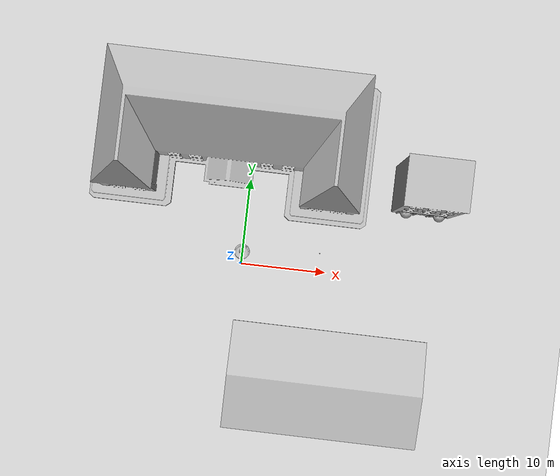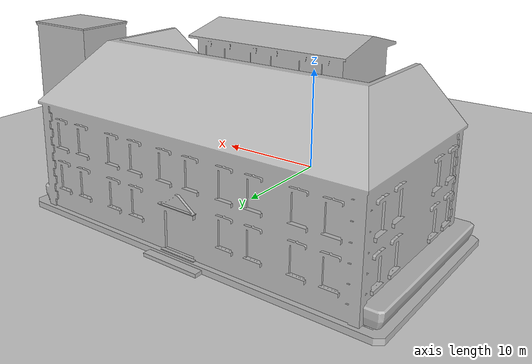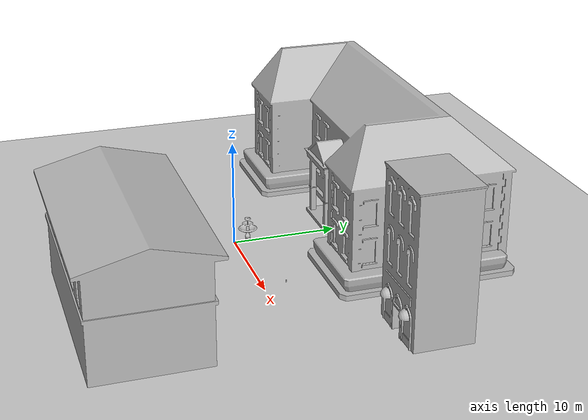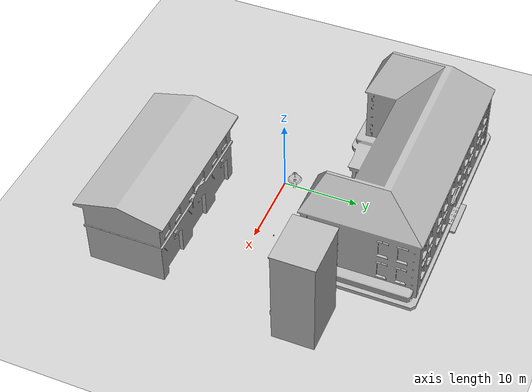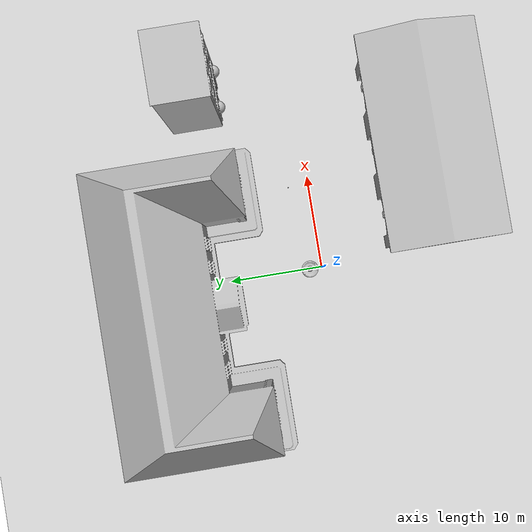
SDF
<sdf version="1.6">
 <world name="default">
  <light name="sun" type="directional">
   <pose>0 0 10 0 -0 0</pose>
   <diffuse>0.8 0.8 0.8 1</diffuse>
   <specular>0.1 0.1 0.1 1</specular>
   <attenuation>
    <range>1000</range>
    <constant>0.9</constant>
    <linear>0.01</linear>
    <quadratic>0.001</quadratic>
   </attenuation>
   <direction>-0.5 0.5 -1</direction>
  </light>
  <model name="ground_plane">
   <static>1</static>
   <link name="link">
    <collision name="collision">
     <geometry><plane><normal>0 0 1</normal><size>100 100</size></plane></geometry>
     <surface><friction><ode><mu>100</mu><mu2>50</mu2></ode></friction></surface>
    </collision>
    <visual name="visual">
     <cast_shadows>0</cast_shadows>
     <geometry><plane><normal>0 0 1</normal><size>100 100</size></plane></geometry>
     <material>
      <script><uri>file://media/materials/scripts/gazebo.material</uri><name>Gazebo/Grey</name></script>
     </material>
    </visual>
   </link>
  </model>
  <gravity>0 0 -9.8</gravity>
  <magnetic_field>6e-06 2.3e-05 -4.2e-05</magnetic_field>
  <atmosphere type="adiabatic"/>
  <physics name="default_physics" default="0" type="ode">
   <max_step_size>0.001</max_step_size>
   <real_time_factor>1</real_time_factor>
   <real_time_update_rate>1000</real_time_update_rate>
  </physics>
  <scene><ambient>0.4 0.4 0.4 1</ambient><background>0.7 0.7 0.7 1</background><shadows>1</shadows></scene>
  <spherical_coordinates>
   <surface_model>EARTH_WGS84</surface_model>
   <latitude_deg>0</latitude_deg>
   <longitude_deg>0</longitude_deg>
   <elevation>0</elevation>
   <heading_deg>0</heading_deg>
  </spherical_coordinates>
  <model name="fountain">
   <static>1</static>
   <link name="link">
    <collision name="collision">
     <geometry><mesh><uri>model://fountain/meshes/fountain.dae</uri><scale>1 1 1</scale></mesh></geometry>
    </collision>
    <visual name="visual">
     <geometry><mesh><uri>model://fountain/meshes/fountain.dae</uri><scale>1 1 1</scale></mesh></geometry>
    </visual>
   </link>
   <pose>-0.035609 1.36375 0 0 -0 0</pose>
  </model>
  <model name="school">
   <static>1</static>
   <link name="link">
    <collision name="collision">
     <geometry><mesh><uri>model://school/meshes/school.dae</uri><scale>1 1 1</scale></mesh></geometry>
    </collision>
    <visual name="visual">
     <geometry><mesh><uri>model://school/meshes/school.dae</uri><scale>1 1 1</scale></mesh></geometry>
    </visual>
   </link>
   <pose>-2.37704 16.8284 0 0 -0 0</pose>
  </model>
  <model name="law_office">
   <static>1</static>
   <link name="link">
    <collision name="collision">
     <pose>0 0 6.96244 0 -0 0</pose>
     <geometry><box><size>6.84401 5.43165 13.9249</size></box></geometry>
    </collision>
    <visual name="visual">
     <geometry><mesh><uri>model://law_office/meshes/law_office.dae</uri><scale>1 1 1</scale></mesh></geometry>
    </visual>
   </link>
   <pose>20.4298 10.9048 0 0 -0 0</pose>
  </model>
  <model name="beer">
   <link name="link">
    <pose>0 0 0.115 0 -0 0</pose>
    <inertial>
     <mass>0.39</mass>
     <inertia><ixx>0.00058</ixx><ixy>0</ixy><ixz>0</ixz><iyy>0.00058</iyy><iyz>0</iyz><izz>0.00019</izz></inertia>
    </inertial>
    <collision name="collision">
     <geometry><cylinder><radius>0.055</radius><length>0.23</length></cylinder></geometry>
    </collision>
    <visual name="visual">
     <geometry><cylinder><radius>0.055</radius><length>0.23</length></cylinder></geometry>
     <material>
      <script>
       <uri>model://beer/materials/scripts</uri>
       <uri>model://beer/materials/textures</uri>
       <name>Beer/Diffuse</name>
      </script>
     </material>
    </visual>
   </link>
   <pose>9.14862 2.24534 -7e-06 -1e-06 -0 -1.9e-05</pose>
  </model>
  <model name="fire_station">
   <static>1</static>
   <link name="link">
    <collision name="main">
     <pose>0 -0.135 5 0 -0 0</pose>
     <geometry><box><size>19.98 9.68 10</size></box></geometry>
    </collision>
    <collision name="front_top">
     <pose>0 4.957 7 0 -0 0</pose>
     <geometry><box><size>20 0.515 6</size></box></geometry>
    </collision>
    <collision name="column_0">
     <pose>9.333 4.957 2 0 -0 0</pose>
     <geometry><box><size>1.315 0.515 4</size></box></geometry>
    </collision>
    <collision name="column_1">
     <pose>3.33 4.957 2 0 -0 0</pose>
     <geometry><box><size>2.63 0.515 4</size></box></geometry>
    </collision>
    <collision name="column_2">
     <pose>-3.33 4.957 2 0 -0 0</pose>
     <geometry><box><size>2.63 0.515 4</size></box></geometry>
    </collision>
    <collision name="column_3">
     <pose>-9.333 4.957 2 0 -0 0</pose>
     <geometry><box><size>1.315 0.515 4</size></box></geometry>
    </collision>
    <collision name="roof_back">
     <pose>0 -2.742 10.467 0.25 -0 0</pose>
     <geometry><box><size>21.47 6.12 0.28</size></box></geometry>
    </collision>
    <collision name="roof_front">
     <pose>0 3.12 10.467 -0.25 0 0</pose>
     <geometry><box><size>21.47 6.12 0.28</size></box></geometry>
    </collision>
    <collision name="roof_base">
     <pose>0 0.188 9.705 0 -0 0</pose>
     <geometry><box><size>21.47 11.86 0.28</size></box></geometry>
    </collision>
    <collision name="roof_filling_0">
     <pose>0 0.188 9.985 0 -0 0</pose>
     <geometry><box><size>21.47 9.53 0.28</size></box></geometry>
    </collision>
    <collision name="roof_filling_1">
     <pose>0 0.188 10.14 0 -0 0</pose>
     <geometry><box><size>21.47 8.41 0.28</size></box></geometry>
    </collision>
    <collision name="roof_filling_2">
     <pose>0 0.188 10.42 0 -0 0</pose>
     <geometry><box><size>21.47 6.25 0.28</size></box></geometry>
    </collision>
    <collision name="roof_filling_3">
     <pose>0 0.188 10.7 0 -0 0</pose>
     <geometry><box><size>21.47 4.05 0.28</size></box></geometry>
    </collision>
    <collision name="roof_filling_4">
     <pose>0 0.188 10.98 0 -0 0</pose>
     <geometry><box><size>21.47 1.83 0.28</size></box></geometry>
    </collision>
    <visual name="visual">
     <geometry><mesh><uri>model://fire_station/meshes/fire_station.dae</uri><scale>1 1 1</scale></mesh></geometry>
    </visual>
   </link>
   <pose>10.8623 -12.4235 0 0 -0 0</pose>
  </model>
 </world>
</sdf>
